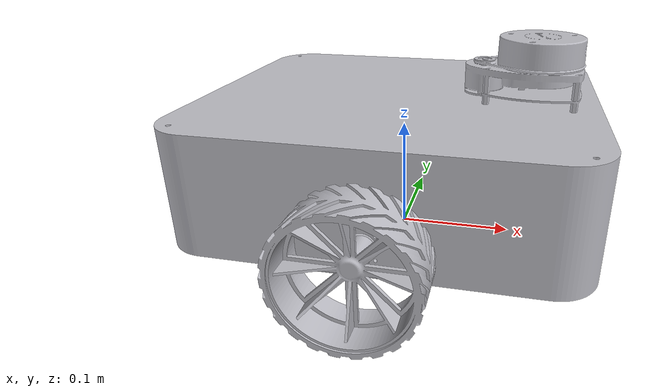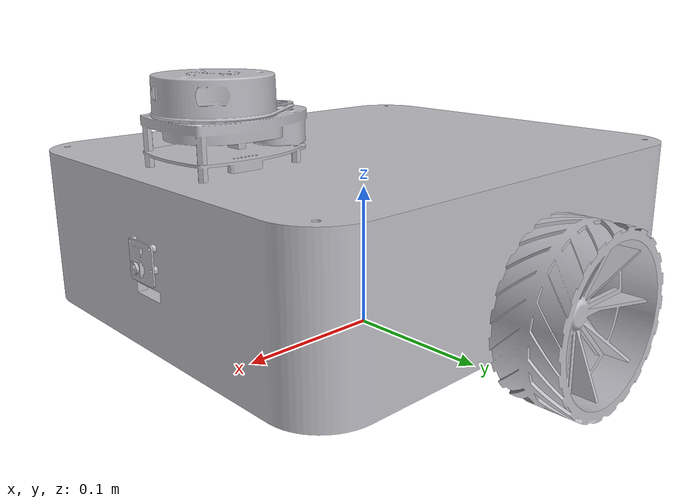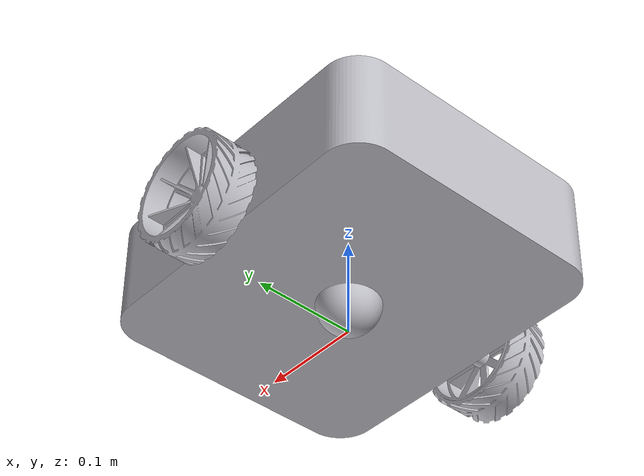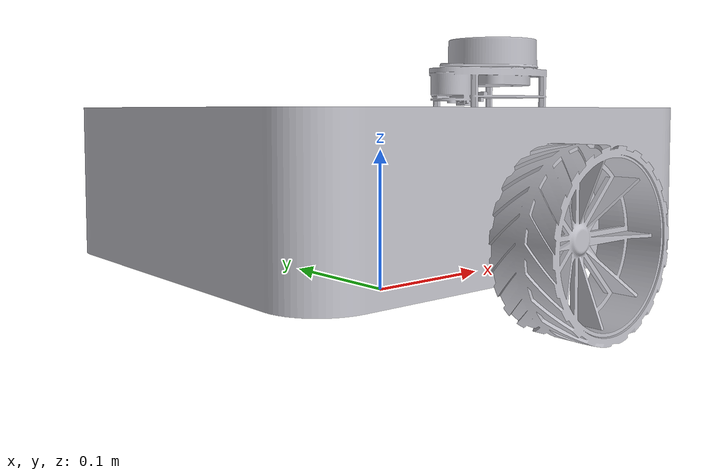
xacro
<?xml version="1.0" ?>
<robot name="ROS2" xmlns:xacro="http://www.ros.org/wiki/xacro">

<xacro:include filename="$(find ROS2_description)/urdf/materials.xacro" />
<xacro:include filename="$(find ROS2_description)/urdf/ROS2.ros2control" />
<xacro:include filename="$(find ROS2_description)/urdf/ROS2.gazebo" />
<link name="base_link">
  <inertial>
    <origin xyz="-0.0002500328650580711 -0.00011734629370466364 0.0780053653961204" rpy="0 0 0"/>
    <mass value="1.9745255969487336"/>
    <inertia ixx="0.022181" iyy="0.02888" izz="0.045008" ixy="0.0" iyz="2e-06" ixz="-0.0"/>
  </inertial>
  <visual>
    <origin xyz="0 0 0" rpy="0 0 0"/>
    <geometry>
      <mesh filename="file://$(find ROS2_description)/meshes/base_link.stl" scale="0.001 0.001 0.001"/>
    </geometry>
    <material name="silver"/>
  </visual>
  <collision>
    <origin xyz="0 0 0" rpy="0 0 0"/>
    <geometry>
      <mesh filename="file://$(find ROS2_description)/meshes/base_link.stl" scale="0.001 0.001 0.001"/>
    </geometry>
  </collision>
</link>

<link name="camera_1">
  <inertial>
    <origin xyz="0.0013913385630233144 -0.010565277271075826 0.002111075671382634" rpy="0 0 0"/>
    <mass value="0.006742869651497777"/>
    <inertia ixx="0.0" iyy="0.0" izz="0.0" ixy="0.0" iyz="0.0" ixz="0.0"/>
  </inertial>
  <visual>
    <origin xyz="-0.169576 -0.011593 -0.082626" rpy="0 0 0"/>
    <geometry>
      <mesh filename="file://$(find ROS2_description)/meshes/camera_1.stl" scale="0.001 0.001 0.001"/>
    </geometry>
    <material name="silver"/>
  </visual>
  <collision>
    <origin xyz="-0.169576 -0.011593 -0.082626" rpy="0 0 0"/>
    <geometry>
      <mesh filename="file://$(find ROS2_description)/meshes/camera_1.stl" scale="0.001 0.001 0.001"/>
    </geometry>
  </collision>
</link>

<link name="lidar_1">
  <inertial>
    <origin xyz="-0.04439643739302415 -0.027996970282328615 0.02241059785378538" rpy="0 0 0"/>
    <mass value="0.4315235077803805"/>
    <inertia ixx="0.000184" iyy="0.000384" izz="0.000439" ixy="-2e-06" iyz="1e-06" ixz="-2.8e-05"/>
  </inertial>
  <visual>
    <origin xyz="-0.143701 -0.025838 -0.13" rpy="0 0 0"/>
    <geometry>
      <mesh filename="file://$(find ROS2_description)/meshes/lidar_1.stl" scale="0.001 0.001 0.001"/>
    </geometry>
    <material name="silver"/>
  </visual>
  <collision>
    <origin xyz="-0.143701 -0.025838 -0.13" rpy="0 0 0"/>
    <geometry>
      <mesh filename="file://$(find ROS2_description)/meshes/lidar_1.stl" scale="0.001 0.001 0.001"/>
    </geometry>
  </collision>
</link>

<link name="right_wheel_1">
  <inertial>
    <origin xyz="-9.370492510693494e-05 -0.02857693978856879 -0.0010541780312682755" rpy="0 0 0"/>
    <mass value="0.09336596112441559"/>
    <inertia ixx="0.000115" iyy="0.000206" izz="0.000117" ixy="-0.0" iyz="-0.0" ixz="0.0"/>
  </inertial>
  <visual>
    <origin xyz="0.000151 0.142653 -0.0555" rpy="0 0 0"/>
    <geometry>
      <mesh filename="file://$(find ROS2_description)/meshes/right_wheel_1.stl" scale="0.001 0.001 0.001"/>
    </geometry>
    <material name="silver"/>
  </visual>
  <collision>
    <origin xyz="0.000151 0.142653 -0.0555" rpy="0 0 0"/>
    <geometry>
      <mesh filename="file://$(find ROS2_description)/meshes/right_wheel_1.stl" scale="0.001 0.001 0.001"/>
    </geometry>
  </collision>
</link>

<link name="left_wheel__1">
  <inertial>
    <origin xyz="6.323127441063589e-08 0.028051127252530617 -1.5084832620110289e-06" rpy="0 0 0"/>
    <mass value="0.09525338804025144"/>
    <inertia ixx="0.000118" iyy="0.000211" izz="0.000118" ixy="0.0" iyz="-0.0" ixz="-0.0"/>
  </inertial>
  <visual>
    <origin xyz="0.000151 -0.142347 -0.0555" rpy="0 0 0"/>
    <geometry>
      <mesh filename="file://$(find ROS2_description)/meshes/left_wheel__1.stl" scale="0.001 0.001 0.001"/>
    </geometry>
    <material name="silver"/>
  </visual>
  <collision>
    <origin xyz="0.000151 -0.142347 -0.0555" rpy="0 0 0"/>
    <geometry>
      <mesh filename="file://$(find ROS2_description)/meshes/left_wheel__1.stl" scale="0.001 0.001 0.001"/>
    </geometry>
  </collision>
</link>

<link name="caster_wheel_1">
  <inertial>
    <origin xyz="6.269272904659744e-08 -2.0999408251577787e-07 -0.011032508020863419" rpy="0 0 0"/>
    <mass value="0.05846238952464058"/>
    <inertia ixx="1.3e-05" iyy="1.3e-05" izz="2.1e-05" ixy="0.0" iyz="0.0" ixz="0.0"/>
  </inertial>
  <visual>
    <origin xyz="0.000151 0.000153 -0.03" rpy="0 0 0"/>
    <geometry>
      <mesh filename="file://$(find ROS2_description)/meshes/caster_wheel_1.stl" scale="0.001 0.001 0.001"/>
    </geometry>
    <material name="silver"/>
  </visual>
  <collision>
    <origin xyz="0.000151 0.000153 -0.03" rpy="0 0 0"/>
    <geometry>
      <mesh filename="file://$(find ROS2_description)/meshes/caster_wheel_1.stl" scale="0.001 0.001 0.001"/>
    </geometry>
  </collision>
</link>

<joint name="camera_joint" type="fixed">
  <origin xyz="0.169576 0.011593 0.082626" rpy="0 0 0"/>
  <parent link="base_link"/>
  <child link="camera_1"/>
</joint>

<joint name="lidar_joint" type="fixed">
  <origin xyz="0.143701 0.025838 0.13" rpy="0 0 0"/>
  <parent link="base_link"/>
  <child link="lidar_1"/>
</joint>

<joint name="right_wheel_joint" type="continuous">
  <origin xyz="-0.000151 -0.142653 0.0555" rpy="0 0 0"/>
  <parent link="base_link"/>
  <child link="right_wheel_1"/>
  <axis xyz="0.0 -1.0 0.0"/>
</joint>

<joint name="left_wheel_joint" type="continuous">
  <origin xyz="-0.000151 0.142347 0.0555" rpy="0 0 0"/>
  <parent link="base_link"/>
  <child link="left_wheel__1"/>
  <axis xyz="0.0 -1.0 0.0"/>
</joint>

<joint name="caster_wheel_joint" type="fixed">
  <origin xyz="-0.000151 -0.000153 0.03" rpy="0 0 0"/>
  <parent link="base_link"/>
  <child link="caster_wheel_1"/>
</joint>

</robot>

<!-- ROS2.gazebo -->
<robot name="ROS2" xmlns:xacro="http://www.ros.org/wiki/xacro" >

<xacro:property name="body_color" value="Gazebo/Silver" />

<gazebo reference="base_link">
  <material>${body_color}</material>
  <mu1>0.2</mu1>
  <mu2>0.2</mu2>
  <self_collide>true</self_collide>
  <gravity>true</gravity>
</gazebo>

<gazebo reference="camera_1">
  <material>${body_color}</material>
  <mu1>0.2</mu1>
  <mu2>0.2</mu2>
  <self_collide>true</self_collide>
</gazebo>

<gazebo reference="lidar_1">
  <material>${body_color}</material>
  <mu1>0.2</mu1>
  <mu2>0.2</mu2>
  <self_collide>true</self_collide>
</gazebo>

<gazebo reference="right_wheel_1">
  <material>${body_color}</material>
  <mu1>0.2</mu1>
  <mu2>0.2</mu2>
  <self_collide>true</self_collide>
</gazebo>

<gazebo reference="left_wheel__1">
  <material>${body_color}</material>
  <mu1>0.2</mu1>
  <mu2>0.2</mu2>
  <self_collide>true</self_collide>
</gazebo>

<gazebo reference="caster_wheel_1">
  <material>${body_color}</material>
  <mu1>0.2</mu1>
  <mu2>0.2</mu2>
  <self_collide>true</self_collide>
</gazebo>

</robot>
